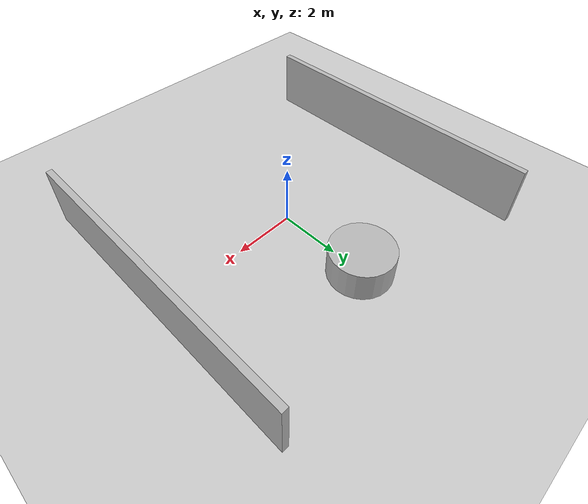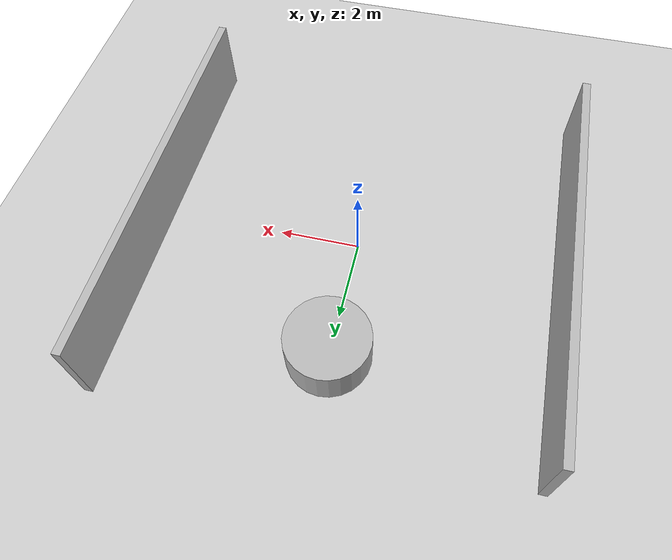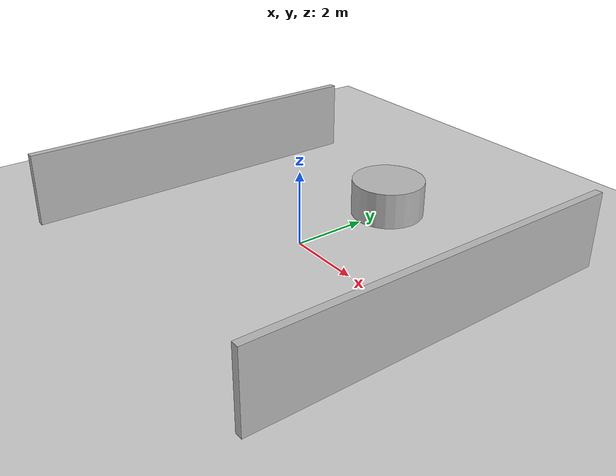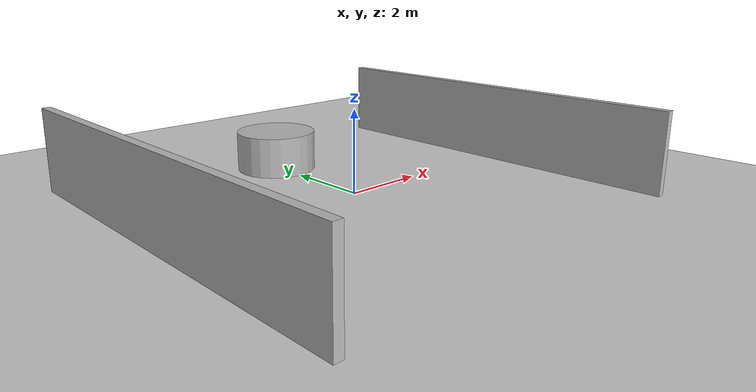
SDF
<?xml version="1.0"?>
<sdf version="1.7">
  <world name="humanoid_navigation_world">
    <!-- Gravity -->
    <gravity>0 0 -9.8</gravity>

    <!-- Physics engine parameters -->
    <physics type="ode">
      <max_step_size>0.001</max_step_size>
      <real_time_factor>1</real_time_factor>
      <real_time_update_rate>1000</real_time_update_rate>
    </physics>

    <!-- Lighting -->
    <light name="sun" type="directional">
      <cast_shadows>true</cast_shadows>
      <pose>0 0 10 0 0 0</pose>
      <diffuse>0.8 0.8 0.8 1</diffuse>
      <specular>0.2 0.2 0.2 1</specular>
      <attenuation>
        <range>1000</range>
        <constant>0.9</constant>
        <linear>0.01</linear>
        <quadratic>0.001</quadratic>
      </attenuation>
      <direction>-0.4 0.2 -1.0</direction>
    </light>

    <!-- Ground plane -->
    <include>
      <uri>model://ground_plane</uri>
    </include>

    <!-- Navigation obstacles -->
    <model name="wall_1">
      <pose>5 0 1 0 0 0</pose>
      <link name="link">
        <collision name="collision">
          <geometry>
            <box>
              <size>0.2 10 2</size>
            </box>
          </geometry>
        </collision>
        <visual name="visual">
          <geometry>
            <box>
              <size>0.2 10 2</size>
            </box>
          </geometry>
        </visual>
        <inertial>
          <mass>100.0</mass>
          <inertia>
            <ixx>833.33</ixx>
            <ixy>0</ixy>
            <ixz>0</ixz>
            <iyy>8.33</iyy>
            <iyz>0</iyz>
            <izz>841.66</izz>
          </inertia>
        </inertial>
      </link>
    </model>

    <model name="wall_2">
      <pose>-5 0 1 0 0 0</pose>
      <link name="link">
        <collision name="collision">
          <geometry>
            <box>
              <size>0.2 10 2</size>
            </box>
          </geometry>
        </collision>
        <visual name="visual">
          <geometry>
            <box>
              <size>0.2 10 2</size>
            </box>
          </geometry>
        </visual>
        <inertial>
          <mass>100.0</mass>
          <inertia>
            <ixx>833.33</ixx>
            <ixy>0</ixy>
            <ixz>0</ixz>
            <iyy>8.33</iyy>
            <iyz>0</iyz>
            <izz>841.66</izz>
          </inertia>
        </inertial>
      </link>
    </model>

    <model name="obstacle_1">
      <pose>0 3 0.5 0 0 0</pose>
      <link name="link">
        <collision name="collision">
          <geometry>
            <cylinder>
              <radius>1</radius>
              <length>1</length>
            </cylinder>
          </geometry>
        </collision>
        <visual name="visual">
          <geometry>
            <cylinder>
              <radius>1</radius>
              <length>1</length>
            </cylinder>
          </geometry>
        </visual>
        <inertial>
          <mass>50.0</mass>
          <inertia>
            <ixx>25.0</ixx>
            <ixy>0</ixy>
            <ixz>0</ixz>
            <iyy>25.0</iyy>
            <iyz>0</iyz>
            <izz>25.0</izz>
          </inertia>
        </inertial>
      </link>
    </model>
  </world>
</sdf>
